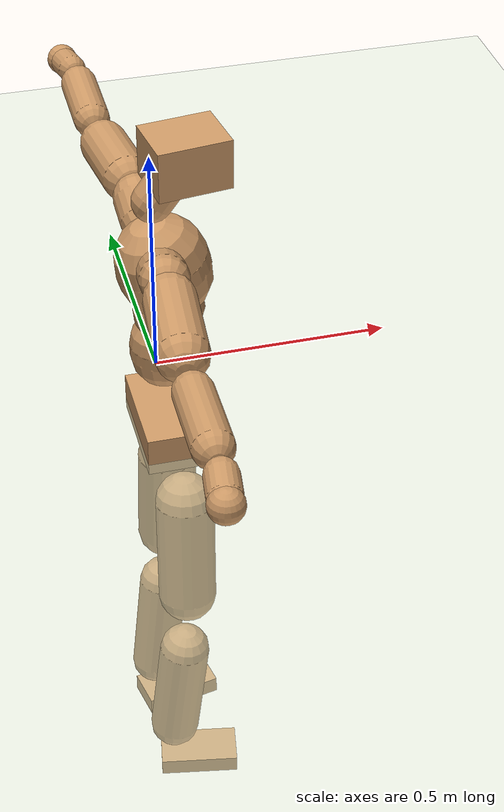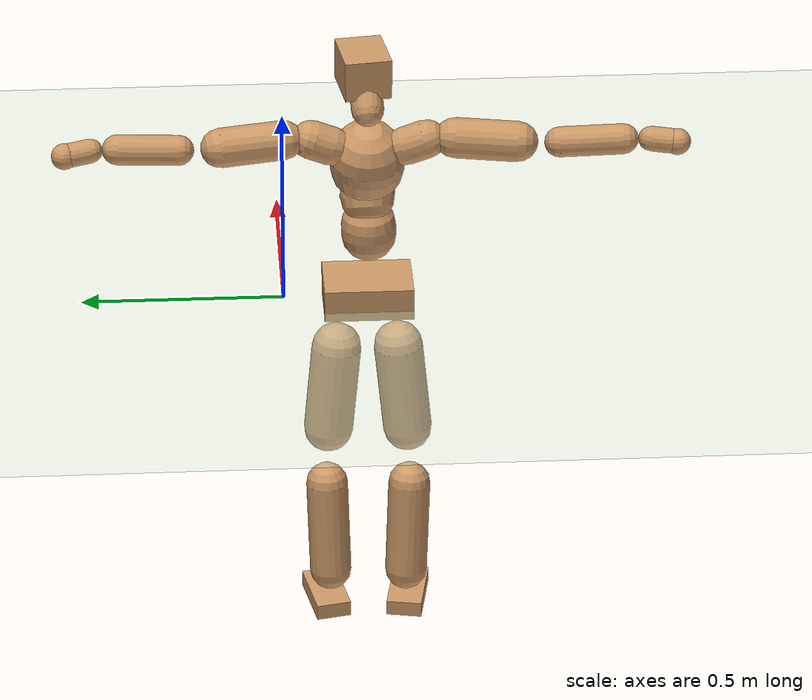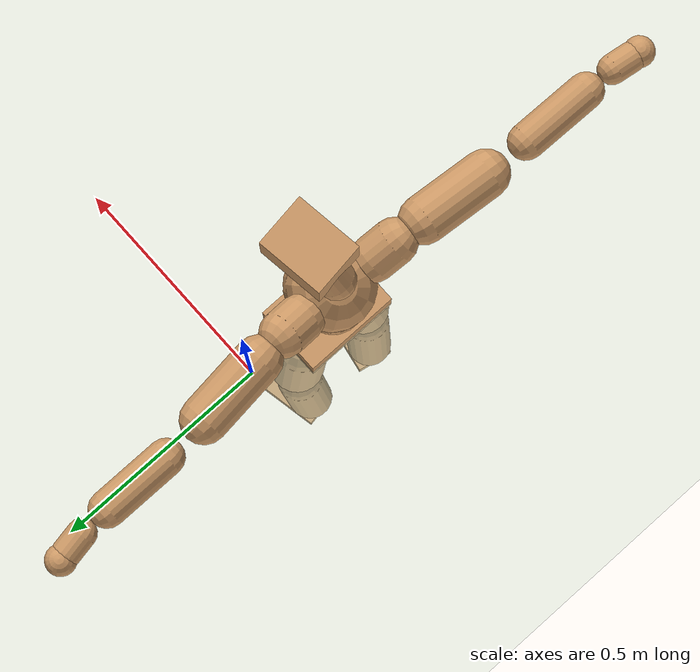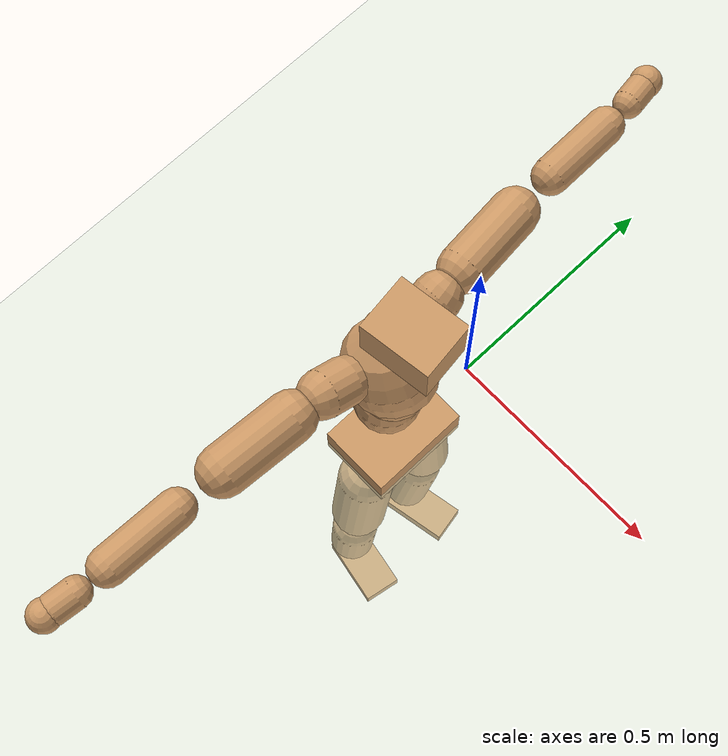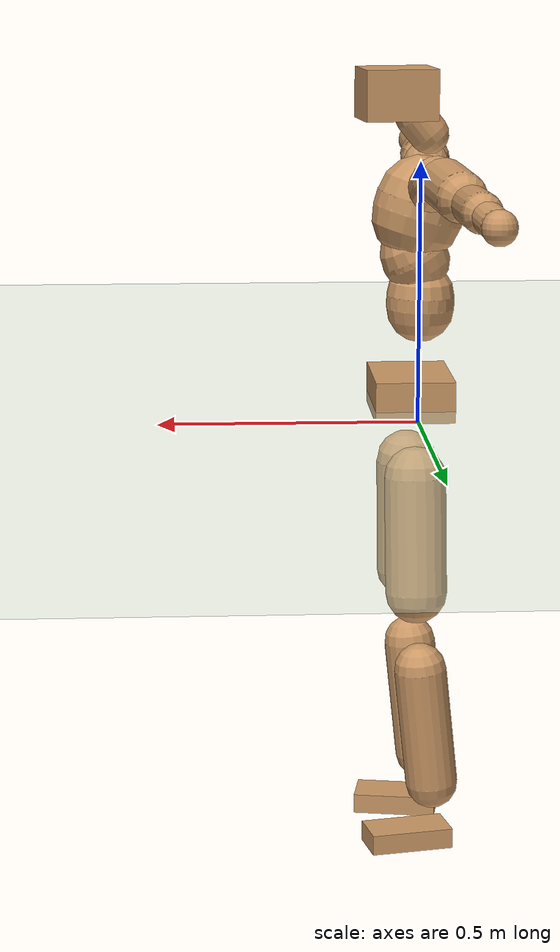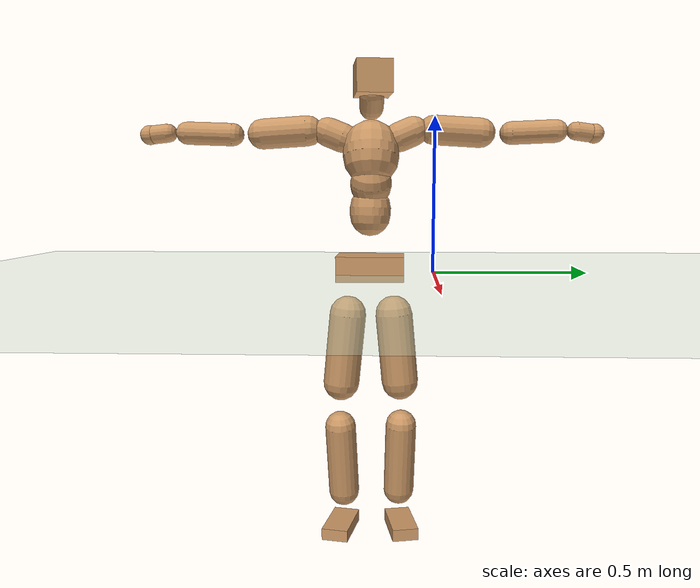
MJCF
<mujoco model="humanoid">
  <compiler coordinate="local" angle="radian"/>
  <default>
    <joint damping="0.0" armature="0.01" stiffness="0.0" limited="true"/>
    <geom conaffinity="1" condim="3" contype="7" margin="0.001" rgba="0.8 0.6 .4 1"/>
  </default>
  <asset>
    <texture type="skybox" builtin="gradient" rgb1=".4 .5 .6" rgb2="0 0 0" width="100" height="100"/>
    <texture builtin="flat" height="1278" mark="cross" markrgb="1 1 1" name="texgeom" random="0.01" rgb1="0.8 0.6 0.4" rgb2="0.8 0.6 0.4" type="cube" width="127"/>
    <texture builtin="checker" height="100" name="texplane" rgb1="0 0 0" rgb2="0.8 0.8 0.8" type="2d" width="100"/>
    <material name="MatPlane" reflectance="0.5" shininess="1" specular="1" texrepeat="60 60" texture="texplane"/>
    <material name="geom" texture="texgeom" texuniform="true"/>
  </asset>
  <worldbody>
    <light cutoff="100" diffuse="1 1 1" dir="-0 0 -1.3" directional="true" exponent="1" pos="0 0 1.3" specular=".1 .1 .1"/>
    <geom conaffinity="1" condim="3" name="floor" pos="0 0 0" rgba="0.8 0.9 0.8 1" size="100 100 .2" type="plane" material="MatPlane"/>
    <body name="Pelvis" pos="0.0004 -0.2064 0.0281">
      <freejoint name="Pelvis"/>
      <geom type="box" contype="1" conaffinity="1" density="500" pos="-0.0059 -0.0000 -0.0128" size="0.0788 0.11 0.0409" quat="1.0000 0.0000 0.0000 0.0007" name="Pelvis"/>
      <body name="L_Hip" pos="-0.0082 0.0708 -0.0915">
        <joint name="L_Hip_x" type="hinge" pos="0 0 0" axis="1 0 0" stiffness="800" damping="80" armature="0.02" range="-180.0000 180.0000"/>
        <joint name="L_Hip_y" type="hinge" pos="0 0 0" axis="0 1 0" stiffness="800" damping="80" armature="0.02" range="-180.0000 180.0000"/>
        <joint name="L_Hip_z" type="hinge" pos="0 0 0" axis="0 0 1" stiffness="800" damping="80" armature="0.02" range="-180.0000 180.0000"/>
        <geom type="capsule" contype="1" conaffinity="1" density="500" fromto="-0.0009 0.0070 -0.0778 -0.0036 0.0282 -0.3112" size="0.0615" name="L_Hip"/>
        <body name="L_Knee" pos="-0.0045 0.0352 -0.389">
          <joint name="L_Knee_x" type="hinge" pos="0 0 0" axis="1 0 0" stiffness="800" damping="80" armature="0.02" range="-180.0000 180.0000"/>
          <joint name="L_Knee_y" type="hinge" pos="0 0 0" axis="0 1 0" stiffness="800" damping="80" armature="0.02" range="-180.0000 180.0000"/>
          <joint name="L_Knee_z" type="hinge" pos="0 0 0" axis="0 0 1" stiffness="800" damping="80" armature="0.02" range="-180.0000 180.0000"/>
          <geom type="capsule" contype="1" conaffinity="1" density="500" fromto="-0.0088 -0.0023 -0.0816 -0.0353 -0.0093 -0.3265" size="0.0526" name="L_Knee"/>
          <body name="L_Ankle" pos="-0.0442 -0.0116 -0.4081">
            <joint name="L_Ankle_x" type="hinge" pos="0 0 0" axis="1 0 0" stiffness="800" damping="80" armature="0.02" range="-180.0000 180.0000"/>
            <joint name="L_Ankle_y" type="hinge" pos="0 0 0" axis="0 1 0" stiffness="800" damping="80" armature="0.02" range="-180.0000 180.0000"/>
            <joint name="L_Ankle_z" type="hinge" pos="0 0 0" axis="0 0 1" stiffness="800" damping="80" armature="0.02" range="-180.0000 180.0000"/>
            <geom type="box" contype="1" conaffinity="1" density="500" pos="0.0587 0.0115 -0.0284" size="0.0838 0.044 0.0204" quat="0.9953 0.0000 0.0000 0.0964" name="L_Ankle"/>
            <body name="L_Toe" pos="0.1175 0.023 -0.0567">
              <joint name="L_Toe_x" type="hinge" pos="0 0 0" axis="1 0 0" stiffness="500" damping="50" armature="0.02" range="-180.0000 180.0000"/>
              <joint name="L_Toe_y" type="hinge" pos="0 0 0" axis="0 1 0" stiffness="500" damping="50" armature="0.02" range="-180.0000 180.0000"/>
              <joint name="L_Toe_z" type="hinge" pos="0 0 0" axis="0 0 1" stiffness="500" damping="50" armature="0.02" range="-180.0000 180.0000"/>
              <geom type="box" contype="1" conaffinity="1" density="500" pos="0.0000 0.0000 0.0279" size="0.0009 0.0022 0.001" quat="0.9947 0.0000 0.0000 0.1029" name="L_Toe"/>
            </body>
          </body>
        </body>
      </body>
      <body name="R_Hip" pos="-0.005 -0.0683 -0.0906">
        <joint name="R_Hip_x" type="hinge" pos="0 0 0" axis="1 0 0" stiffness="800" damping="80" armature="0.02" range="-180.0000 180.0000"/>
        <joint name="R_Hip_y" type="hinge" pos="0 0 0" axis="0 1 0" stiffness="800" damping="80" armature="0.02" range="-180.0000 180.0000"/>
        <joint name="R_Hip_z" type="hinge" pos="0 0 0" axis="0 0 1" stiffness="800" damping="80" armature="0.02" range="-180.0000 180.0000"/>
        <geom type="capsule" contype="1" conaffinity="1" density="500" fromto="-0.0014 -0.0081 -0.0793 -0.0057 -0.0322 -0.3173" size="0.0607" name="R_Hip"/>
        <body name="R_Knee" pos="-0.0071 -0.0403 -0.3966">
          <joint name="R_Knee_x" type="hinge" pos="0 0 0" axis="1 0 0" stiffness="800" damping="80" armature="0.02" range="-180.0000 180.0000"/>
          <joint name="R_Knee_y" type="hinge" pos="0 0 0" axis="0 1 0" stiffness="800" damping="80" armature="0.02" range="-180.0000 180.0000"/>
          <joint name="R_Knee_z" type="hinge" pos="0 0 0" axis="0 0 1" stiffness="800" damping="80" armature="0.02" range="-180.0000 180.0000"/>
          <geom type="capsule" contype="1" conaffinity="1" density="500" fromto="-0.0085 0.0029 -0.0817 -0.0340 0.0118 -0.3269" size="0.0529" name="R_Knee"/>
          <body name="R_Ankle" pos="-0.0424 0.0147 -0.4086">
            <joint name="R_Ankle_x" type="hinge" pos="0 0 0" axis="1 0 0" stiffness="800" damping="80" armature="0.02" range="-180.0000 180.0000"/>
            <joint name="R_Ankle_y" type="hinge" pos="0 0 0" axis="0 1 0" stiffness="800" damping="80" armature="0.02" range="-180.0000 180.0000"/>
            <joint name="R_Ankle_z" type="hinge" pos="0 0 0" axis="0 0 1" stiffness="800" damping="80" armature="0.02" range="-180.0000 180.0000"/>
            <geom type="box" contype="1" conaffinity="1" density="500" pos="0.0602 -0.0110 -0.0242" size="0.085 0.045 0.02" quat="0.9959 0.0000 0.0000 -0.0902" name="R_Ankle"/>
            <body name="R_Toe" pos="0.1204 -0.022 -0.0483">
              <joint name="R_Toe_x" type="hinge" pos="0 0 0" axis="1 0 0" stiffness="500" damping="50" armature="0.02" range="-180.0000 180.0000"/>
              <joint name="R_Toe_y" type="hinge" pos="0 0 0" axis="0 1 0" stiffness="500" damping="50" armature="0.02" range="-180.0000 180.0000"/>
              <joint name="R_Toe_z" type="hinge" pos="0 0 0" axis="0 0 1" stiffness="500" damping="50" armature="0.02" range="-180.0000 180.0000"/>
              <geom type="box" contype="1" conaffinity="1" density="500" pos="0.0000 0.0000 0.0260" size="0.0008 0.0022 0.0011" quat="0.9967 0.0000 0.0000 -0.0808" name="R_Toe"/>
            </body>
          </body>
        </body>
      </body>
      <body name="Torso" pos="-0.0222 -0.0026 0.1053">
        <joint name="Torso_x" type="hinge" pos="0 0 0" axis="1 0 0" stiffness="1000" damping="100" armature="0.02" range="-180.0000 180.0000"/>
        <joint name="Torso_y" type="hinge" pos="0 0 0" axis="0 1 0" stiffness="1000" damping="100" armature="0.02" range="-180.0000 180.0000"/>
        <joint name="Torso_z" type="hinge" pos="0 0 0" axis="0 0 1" stiffness="1000" damping="100" armature="0.02" range="-180.0000 180.0000"/>
        <geom type="capsule" contype="1" conaffinity="1" density="500" fromto="-0.0015 0.0018 0.0786 -0.0010 0.0012 0.0524" size="0.0675" name="Torso"/>
        <body name="Spine" pos="-0.0026 0.0031 0.131">
          <joint name="Spine_x" type="hinge" pos="0 0 0" axis="1 0 0" stiffness="1000" damping="100" armature="0.02" range="-180.0000 180.0000"/>
          <joint name="Spine_y" type="hinge" pos="0 0 0" axis="0 1 0" stiffness="1000" damping="100" armature="0.02" range="-180.0000 180.0000"/>
          <joint name="Spine_z" type="hinge" pos="0 0 0" axis="0 0 1" stiffness="1000" damping="100" armature="0.02" range="-180.0000 180.0000"/>
          <geom type="capsule" contype="1" conaffinity="1" density="500" fromto="0.0158 0.0012 0.0291 0.0106 0.0008 0.0194" size="0.0677" name="Spine"/>
          <body name="Chest" pos="0.0264 0.0019 0.0484">
            <joint name="Chest_x" type="hinge" pos="0 0 0" axis="1 0 0" stiffness="1000" damping="100" armature="0.02" range="-180.0000 180.0000"/>
            <joint name="Chest_y" type="hinge" pos="0 0 0" axis="0 1 0" stiffness="1000" damping="100" armature="0.02" range="-180.0000 180.0000"/>
            <joint name="Chest_z" type="hinge" pos="0 0 0" axis="0 0 1" stiffness="1000" damping="100" armature="0.02" range="-180.0000 180.0000"/>
            <geom type="capsule" contype="1" conaffinity="1" density="500" fromto="-0.0252 -0.0006 0.0875 -0.0168 -0.0004 0.0583" size="0.0909" name="Chest"/>
            <body name="Neck" pos="-0.0484 -0.0013 0.2059">
              <joint name="Neck_x" type="hinge" pos="0 0 0" axis="1 0 0" stiffness="500" damping="50" armature="0.02" range="-180.0000 180.0000"/>
              <joint name="Neck_y" type="hinge" pos="0 0 0" axis="0 1 0" stiffness="500" damping="50" armature="0.02" range="-180.0000 180.0000"/>
              <joint name="Neck_z" type="hinge" pos="0 0 0" axis="0 0 1" stiffness="500" damping="50" armature="0.02" range="-180.0000 180.0000"/>
              <geom type="capsule" contype="1" conaffinity="1" density="500" fromto="0.0098 0.0010 0.0121 0.0393 0.0040 0.0484" size="0.0395" name="Neck"/>
              <body name="Head" pos="0.0491 0.005 0.0605">
                <joint name="Head_x" type="hinge" pos="0 0 0" axis="1 0 0" stiffness="500" damping="50" armature="0.02" range="-180.0000 180.0000"/>
                <joint name="Head_y" type="hinge" pos="0 0 0" axis="0 1 0" stiffness="500" damping="50" armature="0.02" range="-180.0000 180.0000"/>
                <joint name="Head_z" type="hinge" pos="0 0 0" axis="0 0 1" stiffness="500" damping="50" armature="0.02" range="-180.0000 180.0000"/>
                <geom type="box" contype="1" conaffinity="1" density="500" pos="0.0255 0.0035 0.0312" size="0.0718 0.0566 0.0498" quat="0.9977 0.0000 0.0000 0.0680" name="Head"/>
              </body>
            </body>
            <body name="L_Thorax" pos="-0.0358 0.0723 0.1168">
              <joint name="L_Thorax_x" type="hinge" pos="0 0 0" axis="1 0 0" stiffness="500" damping="50" armature="0.02" range="-180.0000 180.0000"/>
              <joint name="L_Thorax_y" type="hinge" pos="0 0 0" axis="0 1 0" stiffness="500" damping="50" armature="0.02" range="-180.0000 180.0000"/>
              <joint name="L_Thorax_z" type="hinge" pos="0 0 0" axis="0 0 1" stiffness="500" damping="50" armature="0.02" range="-180.0000 180.0000"/>
              <geom type="capsule" contype="1" conaffinity="1" density="500" fromto="-0.0010 0.0159 0.0066 -0.0040 0.0635 0.0266" size="0.0478" name="L_Thorax"/>
              <body name="L_Shoulder" pos="-0.0049 0.0794 0.0332">
                <joint name="L_Shoulder_x" type="hinge" pos="0 0 0" axis="1 0 0" stiffness="500" damping="50" armature="0.02" range="-720.0000 720.0000"/>
                <joint name="L_Shoulder_y" type="hinge" pos="0 0 0" axis="0 1 0" stiffness="500" damping="50" armature="0.02" range="-720.0000 720.0000"/>
                <joint name="L_Shoulder_z" type="hinge" pos="0 0 0" axis="0 0 1" stiffness="500" damping="50" armature="0.02" range="-720.0000 720.0000"/>
                <geom type="capsule" contype="1" conaffinity="1" density="500" fromto="-0.0054 0.0509 -0.0027 -0.0217 0.2036 -0.0109" size="0.048" name="L_Shoulder"/>
                <body name="L_Elbow" pos="-0.0271 0.2545 -0.0136">
                  <joint name="L_Elbow_x" type="hinge" pos="0 0 0" axis="1 0 0" stiffness="500" damping="50" armature="0.02" range="-720.0000 720.0000"/>
                  <joint name="L_Elbow_y" type="hinge" pos="0 0 0" axis="0 1 0" stiffness="500" damping="50" armature="0.02" range="-720.0000 720.0000"/>
                  <joint name="L_Elbow_z" type="hinge" pos="0 0 0" axis="0 0 1" stiffness="500" damping="50" armature="0.02" range="-720.0000 720.0000"/>
                  <geom type="capsule" contype="1" conaffinity="1" density="500" fromto="-0.0001 0.0488 0.0021 -0.0005 0.1952 0.0082" size="0.0371" name="L_Elbow"/>
                  <body name="L_Wrist" pos="-0.0006 0.244 0.0103">
                    <joint name="L_Wrist_x" type="hinge" pos="0 0 0" axis="1 0 0" stiffness="300" damping="30" armature="0.02" range="-180.0000 180.0000"/>
                    <joint name="L_Wrist_y" type="hinge" pos="0 0 0" axis="0 1 0" stiffness="300" damping="30" armature="0.02" range="-180.0000 180.0000"/>
                    <joint name="L_Wrist_z" type="hinge" pos="0 0 0" axis="0 0 1" stiffness="300" damping="30" armature="0.02" range="-180.0000 180.0000"/>
                    <geom type="capsule" contype="1" conaffinity="1" density="500" fromto="-0.0027 0.0156 -0.0019 -0.0106 0.0626 -0.0077" size="0.0294" name="L_Wrist"/>
                    <body name="L_Hand" pos="-0.0133 0.0782 -0.0096">
                      <joint name="L_Hand_x" type="hinge" pos="0 0 0" axis="1 0 0" stiffness="300" damping="30" armature="0.02" range="-180.0000 180.0000"/>
                      <joint name="L_Hand_y" type="hinge" pos="0 0 0" axis="0 1 0" stiffness="300" damping="30" armature="0.02" range="-180.0000 180.0000"/>
                      <joint name="L_Hand_z" type="hinge" pos="0 0 0" axis="0 0 1" stiffness="300" damping="30" armature="0.02" range="-180.0000 180.0000"/>
                      <geom type="sphere" contype="1" conaffinity="1" density="500" size="0.0316" pos="0.0000 0.0000 0.0000" name="L_Hand"/>
                    </body>
                  </body>
                </body>
              </body>
            </body>
            <body name="R_Thorax" pos="-0.0416 -0.0741 0.1146">
              <joint name="R_Thorax_x" type="hinge" pos="0 0 0" axis="1 0 0" stiffness="500" damping="50" armature="0.02" range="-180.0000 180.0000"/>
              <joint name="R_Thorax_y" type="hinge" pos="0 0 0" axis="0 1 0" stiffness="500" damping="50" armature="0.02" range="-180.0000 180.0000"/>
              <joint name="R_Thorax_z" type="hinge" pos="0 0 0" axis="0 0 1" stiffness="500" damping="50" armature="0.02" range="-180.0000 180.0000"/>
              <geom type="capsule" contype="1" conaffinity="1" density="500" fromto="-0.0016 -0.0170 0.0068 -0.0065 -0.0681 0.0273" size="0.0472" name="R_Thorax"/>
              <body name="R_Shoulder" pos="-0.0081 -0.0851 0.0342">
                <joint name="R_Shoulder_x" type="hinge" pos="0 0 0" axis="1 0 0" stiffness="500" damping="50" armature="0.02" range="-720.0000 720.0000"/>
                <joint name="R_Shoulder_y" type="hinge" pos="0 0 0" axis="0 1 0" stiffness="500" damping="50" armature="0.02" range="-720.0000 720.0000"/>
                <joint name="R_Shoulder_z" type="hinge" pos="0 0 0" axis="0 0 1" stiffness="500" damping="50" armature="0.02" range="-720.0000 720.0000"/>
                <geom type="capsule" contype="1" conaffinity="1" density="500" fromto="-0.0040 -0.0504 -0.0029 -0.0162 -0.2015 -0.0116" size="0.0494" name="R_Shoulder"/>
                <body name="R_Elbow" pos="-0.0202 -0.2519 -0.0145">
                  <joint name="R_Elbow_x" type="hinge" pos="0 0 0" axis="1 0 0" stiffness="500" damping="50" armature="0.02" range="-720.0000 720.0000"/>
                  <joint name="R_Elbow_y" type="hinge" pos="0 0 0" axis="0 1 0" stiffness="500" damping="50" armature="0.02" range="-720.0000 720.0000"/>
                  <joint name="R_Elbow_z" type="hinge" pos="0 0 0" axis="0 0 1" stiffness="500" damping="50" armature="0.02" range="-720.0000 720.0000"/>
                  <geom type="capsule" contype="1" conaffinity="1" density="500" fromto="-0.0010 -0.0508 0.0018 -0.0042 -0.2033 0.0073" size="0.0373" name="R_Elbow"/>
                  <body name="R_Wrist" pos="-0.0052 -0.2541 0.0091">
                    <joint name="R_Wrist_x" type="hinge" pos="0 0 0" axis="1 0 0" stiffness="300" damping="30" armature="0.02" range="-180.0000 180.0000"/>
                    <joint name="R_Wrist_y" type="hinge" pos="0 0 0" axis="0 1 0" stiffness="300" damping="30" armature="0.02" range="-180.0000 180.0000"/>
                    <joint name="R_Wrist_z" type="hinge" pos="0 0 0" axis="0 0 1" stiffness="300" damping="30" armature="0.02" range="-180.0000 180.0000"/>
                    <geom type="capsule" contype="1" conaffinity="1" density="500" fromto="-0.0021 -0.0160 -0.0014 -0.0083 -0.0639 -0.0057" size="0.0304" name="R_Wrist"/>
                    <body name="R_Hand" pos="-0.0104 -0.0799 -0.0071">
                      <joint name="R_Hand_x" type="hinge" pos="0 0 0" axis="1 0 0" stiffness="300" damping="30" armature="0.02" range="-180.0000 180.0000"/>
                      <joint name="R_Hand_y" type="hinge" pos="0 0 0" axis="0 1 0" stiffness="300" damping="30" armature="0.02" range="-180.0000 180.0000"/>
                      <joint name="R_Hand_z" type="hinge" pos="0 0 0" axis="0 0 1" stiffness="300" damping="30" armature="0.02" range="-180.0000 180.0000"/>
                      <geom type="sphere" contype="1" conaffinity="1" density="500" size="0.0321" pos="0.0000 0.0000 0.0000" name="R_Hand"/>
                    </body>
                  </body>
                </body>
              </body>
            </body>
          </body>
        </body>
      </body>
    </body>
  </worldbody>
  <actuator>
    <motor name="L_Hip_x" joint="L_Hip_x" gear="500"/>
    <motor name="L_Hip_y" joint="L_Hip_y" gear="500"/>
    <motor name="L_Hip_z" joint="L_Hip_z" gear="500"/>
    <motor name="L_Knee_x" joint="L_Knee_x" gear="500"/>
    <motor name="L_Knee_y" joint="L_Knee_y" gear="500"/>
    <motor name="L_Knee_z" joint="L_Knee_z" gear="500"/>
    <motor name="L_Ankle_x" joint="L_Ankle_x" gear="500"/>
    <motor name="L_Ankle_y" joint="L_Ankle_y" gear="500"/>
    <motor name="L_Ankle_z" joint="L_Ankle_z" gear="500"/>
    <motor name="L_Toe_x" joint="L_Toe_x" gear="500"/>
    <motor name="L_Toe_y" joint="L_Toe_y" gear="500"/>
    <motor name="L_Toe_z" joint="L_Toe_z" gear="500"/>
    <motor name="R_Hip_x" joint="R_Hip_x" gear="500"/>
    <motor name="R_Hip_y" joint="R_Hip_y" gear="500"/>
    <motor name="R_Hip_z" joint="R_Hip_z" gear="500"/>
    <motor name="R_Knee_x" joint="R_Knee_x" gear="500"/>
    <motor name="R_Knee_y" joint="R_Knee_y" gear="500"/>
    <motor name="R_Knee_z" joint="R_Knee_z" gear="500"/>
    <motor name="R_Ankle_x" joint="R_Ankle_x" gear="500"/>
    <motor name="R_Ankle_y" joint="R_Ankle_y" gear="500"/>
    <motor name="R_Ankle_z" joint="R_Ankle_z" gear="500"/>
    <motor name="R_Toe_x" joint="R_Toe_x" gear="500"/>
    <motor name="R_Toe_y" joint="R_Toe_y" gear="500"/>
    <motor name="R_Toe_z" joint="R_Toe_z" gear="500"/>
    <motor name="Torso_x" joint="Torso_x" gear="500"/>
    <motor name="Torso_y" joint="Torso_y" gear="500"/>
    <motor name="Torso_z" joint="Torso_z" gear="500"/>
    <motor name="Spine_x" joint="Spine_x" gear="500"/>
    <motor name="Spine_y" joint="Spine_y" gear="500"/>
    <motor name="Spine_z" joint="Spine_z" gear="500"/>
    <motor name="Chest_x" joint="Chest_x" gear="500"/>
    <motor name="Chest_y" joint="Chest_y" gear="500"/>
    <motor name="Chest_z" joint="Chest_z" gear="500"/>
    <motor name="Neck_x" joint="Neck_x" gear="500"/>
    <motor name="Neck_y" joint="Neck_y" gear="500"/>
    <motor name="Neck_z" joint="Neck_z" gear="500"/>
    <motor name="Head_x" joint="Head_x" gear="500"/>
    <motor name="Head_y" joint="Head_y" gear="500"/>
    <motor name="Head_z" joint="Head_z" gear="500"/>
    <motor name="L_Thorax_x" joint="L_Thorax_x" gear="500"/>
    <motor name="L_Thorax_y" joint="L_Thorax_y" gear="500"/>
    <motor name="L_Thorax_z" joint="L_Thorax_z" gear="500"/>
    <motor name="L_Shoulder_x" joint="L_Shoulder_x" gear="500"/>
    <motor name="L_Shoulder_y" joint="L_Shoulder_y" gear="500"/>
    <motor name="L_Shoulder_z" joint="L_Shoulder_z" gear="500"/>
    <motor name="L_Elbow_x" joint="L_Elbow_x" gear="500"/>
    <motor name="L_Elbow_y" joint="L_Elbow_y" gear="500"/>
    <motor name="L_Elbow_z" joint="L_Elbow_z" gear="500"/>
    <motor name="L_Wrist_x" joint="L_Wrist_x" gear="500"/>
    <motor name="L_Wrist_y" joint="L_Wrist_y" gear="500"/>
    <motor name="L_Wrist_z" joint="L_Wrist_z" gear="500"/>
    <motor name="L_Hand_x" joint="L_Hand_x" gear="500"/>
    <motor name="L_Hand_y" joint="L_Hand_y" gear="500"/>
    <motor name="L_Hand_z" joint="L_Hand_z" gear="500"/>
    <motor name="R_Thorax_x" joint="R_Thorax_x" gear="500"/>
    <motor name="R_Thorax_y" joint="R_Thorax_y" gear="500"/>
    <motor name="R_Thorax_z" joint="R_Thorax_z" gear="500"/>
    <motor name="R_Shoulder_x" joint="R_Shoulder_x" gear="500"/>
    <motor name="R_Shoulder_y" joint="R_Shoulder_y" gear="500"/>
    <motor name="R_Shoulder_z" joint="R_Shoulder_z" gear="500"/>
    <motor name="R_Elbow_x" joint="R_Elbow_x" gear="500"/>
    <motor name="R_Elbow_y" joint="R_Elbow_y" gear="500"/>
    <motor name="R_Elbow_z" joint="R_Elbow_z" gear="500"/>
    <motor name="R_Wrist_x" joint="R_Wrist_x" gear="500"/>
    <motor name="R_Wrist_y" joint="R_Wrist_y" gear="500"/>
    <motor name="R_Wrist_z" joint="R_Wrist_z" gear="500"/>
    <motor name="R_Hand_x" joint="R_Hand_x" gear="500"/>
    <motor name="R_Hand_y" joint="R_Hand_y" gear="500"/>
    <motor name="R_Hand_z" joint="R_Hand_z" gear="500"/>
  </actuator>
  <contact>
    <exclude body1="Torso" body2="Chest"/>
    <exclude body1="Head" body2="Chest"/>
    <exclude body1="R_Knee" body2="R_Toe"/>
    <exclude body1="R_Knee" body2="L_Ankle"/>
    <exclude body1="R_Knee" body2="L_Toe"/>
    <exclude body1="L_Knee" body2="L_Toe"/>
    <exclude body1="L_Knee" body2="R_Ankle"/>
    <exclude body1="L_Knee" body2="R_Toe"/>
    <exclude body1="L_Shoulder" body2="Chest"/>
    <exclude body1="R_Shoulder" body2="Chest"/>
  </contact>
  <sensor/>
  <size njmax="700" nconmax="700"/>
</mujoco>
